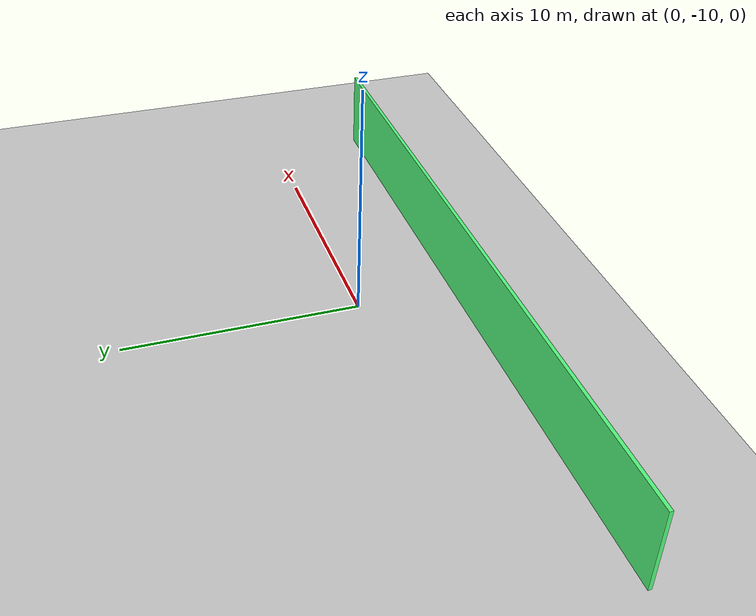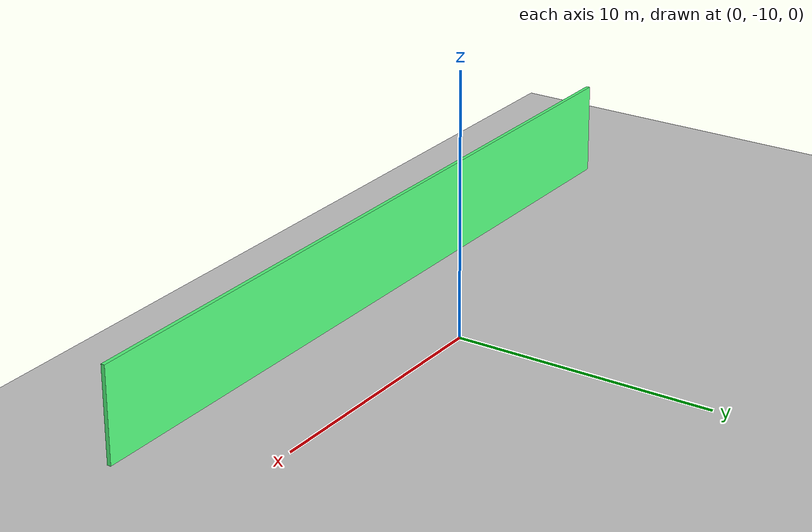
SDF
<sdf version="1.6">
 <world name="default">
  <model name="ground_plane">
   <static>1</static>
   <link name="link">
    <collision name="collision">
     <geometry><plane><normal>0 0 1</normal><size>100 100</size></plane></geometry>
     <surface><friction><ode><mu>100</mu><mu2>50</mu2></ode></friction></surface>
    </collision>
    <visual name="visual">
     <cast_shadows>0</cast_shadows>
     <geometry><plane><normal>0 0 1</normal><size>100 100</size></plane></geometry>
     <material>
      <script><uri>file://media/materials/scripts/gazebo.material</uri><name>Gazebo/Grey</name></script>
     </material>
    </visual>
   </link>
  </model>
  <model name="myfloorplan">
   <link name="Wall_6">
    <pose>0 -16 0 0 -0 3.14159</pose>
    <visual name="Wall_6_Visual">
     <pose>0 0 1.8 0 -0 0</pose>
     <geometry><box><size>30.15 0.15 3.6</size></box></geometry>
     <material>
      <script><uri>file://media/materials/scripts/gazebo.material</uri><name>Gazebo/Grey</name></script>
      <ambient>0.333333 1 0.498039 1</ambient>
     </material>
    </visual>
    <collision name="Wall_6_Collision">
     <pose>0 0 1.8 0 -0 0</pose>
     <geometry><box><size>30.15 0.15 3.6</size></box></geometry>
     <surface>
      <friction>
       <ode><mu>1</mu><mu2>1</mu2><fdir1>0 0 0</fdir1><slip1>0</slip1><slip2>0</slip2></ode>
       <torsional>
        <coefficient>1</coefficient>
        <patch_radius>0</patch_radius>
        <surface_radius>0</surface_radius>
        <use_patch_radius>1</use_patch_radius>
        <ode><slip>0</slip></ode>
       </torsional>
      </friction>
      <bounce><restitution_coefficient>0</restitution_coefficient><threshold>1e+06</threshold></bounce>
      <contact>
       <collide_without_contact>0</collide_without_contact>
       <collide_without_contact_bitmask>1</collide_without_contact_bitmask>
       <collide_bitmask>1</collide_bitmask>
       <ode>
        <soft_cfm>0</soft_cfm>
        <soft_erp>0.2</soft_erp>
        <kp>1e+13</kp>
        <kd>1</kd>
        <max_vel>0.01</max_vel>
        <min_depth>0</min_depth>
       </ode>
       <bullet>
        <split_impulse>1</split_impulse>
        <split_impulse_penetration_threshold>-0.01</split_impulse_penetration_threshold>
        <soft_cfm>0</soft_cfm>
        <soft_erp>0.2</soft_erp>
        <kp>1e+13</kp>
        <kd>1</kd>
       </bullet>
      </contact>
     </surface>
    </collision>
   </link>
   <static>1</static>
   <pose>-1.20922 1.7115 0 0 -0 0</pose>
  </model>
 </world>
</sdf>
